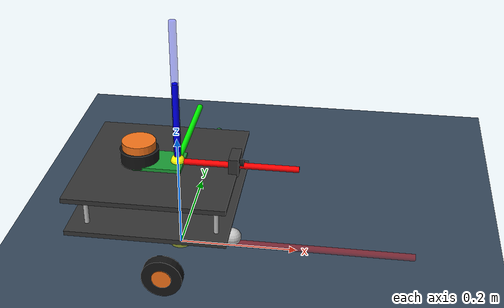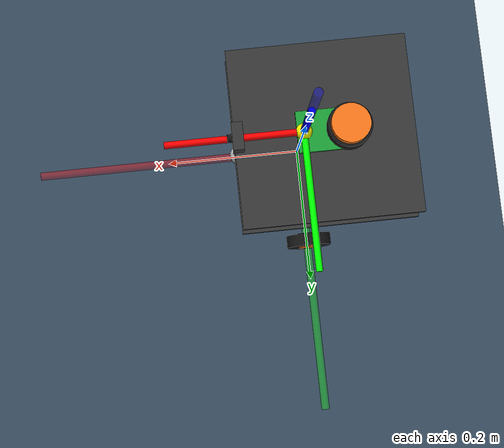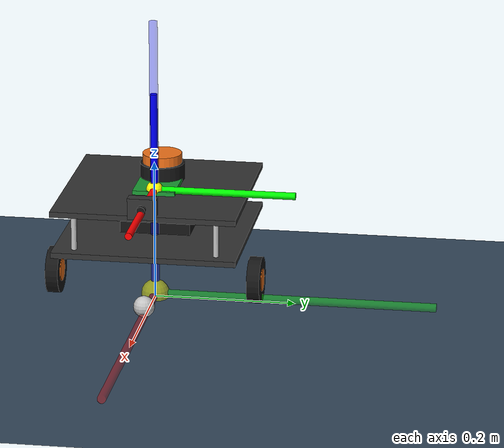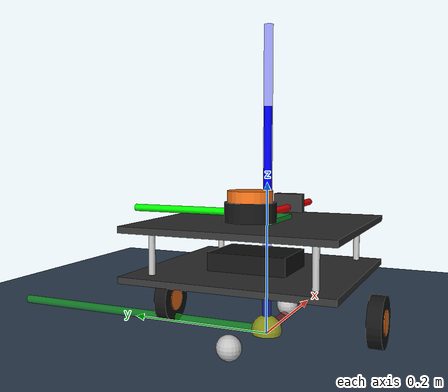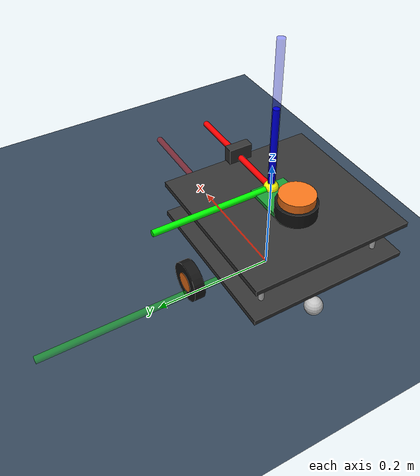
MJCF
<mujoco model="turtlebot3_waffle_pi">
  <compiler angle="radian" coordinate="local" inertiafromgeom="true"/>
  <!-- implicitfast + 2 ms step keeps the velocity-controlled wheels stable (RK4 at 5 ms made the robot bounce) -->
  <option gravity="0 0 -9.81" timestep="0.002" integrator="implicitfast"/>

  <default>
    <geom contype="1" conaffinity="1" condim="3"/>
  </default>

  <visual>
    <headlight ambient="0.4 0.4 0.4" diffuse="0.8 0.8 0.8" specular="0.1 0.1 0.1"/>
  </visual>

  <asset>
    <texture type="skybox" builtin="gradient" rgb1="0.3 0.5 0.7" rgb2="0.1 0.15 0.2" width="512" height="512"/>
    <texture name="grid" type="2d" builtin="checker" width="512" height="512" rgb1="0.25 0.35 0.45" rgb2="0.15 0.2 0.25"/>
    <material name="grid_mat" texture="grid" texrepeat="25 25" reflectance="0.2"/>
    <material name="dark_gray" rgba="0.2 0.2 0.2 1"/>
    <material name="light_gray" rgba="0.75 0.75 0.75 1"/>
    <material name="black" rgba="0.08 0.08 0.08 1"/>
    <material name="red_axis" rgba="1 0 0 1"/>
    <material name="green_axis" rgba="0 1 0 1"/>
    <material name="blue_axis" rgba="0 0 1 1"/>
    <material name="orange" rgba="0.95 0.45 0.1 1"/>
  </asset>

  <worldbody>
    <!-- Ground Plane -->
    <geom name="floor" type="plane" size="20 20 0.1" material="grid_mat" friction="1.5 0.01 0.001"/>

    <!-- Fixed World Reference Frame {s} at Origin -->
    <site name="world_origin" pos="0 0 0.005" size="0.02" rgba="1 1 0 0.5"/>
    <geom name="world_x" type="cylinder" fromto="0 0 0.005 0.4 0 0.005" size="0.006" rgba="1 0 0 0.35" contype="0" conaffinity="0"/>
    <geom name="world_y" type="cylinder" fromto="0 0 0.005 0 0.4 0.005" size="0.006" rgba="0 1 0 0.35" contype="0" conaffinity="0"/>
    <geom name="world_z" type="cylinder" fromto="0 0 0.005 0 0 0.405" size="0.006" rgba="0 0 1 0.35" contype="0" conaffinity="0"/>

    <!-- TurtleBot3 Body -->
    <body name="turtlebot" pos="0 0 0.08">
      <freejoint name="root"/>

      <!-- Main Chassis Plates -->
      <geom name="base_plate_bottom" type="box" size="0.13 0.13 0.004" pos="-0.03 0 0.01" material="dark_gray" mass="0.6"/>
      <geom name="base_plate_top" type="box" size="0.13 0.13 0.004" pos="-0.03 0 0.07" material="dark_gray" mass="0.4"/>

      <!-- Standoff Spacers -->
      <geom name="sp_fl" type="cylinder" fromto="0.08 0.10 0.014 0.08 0.10 0.066" size="0.004" material="light_gray" mass="0.01" contype="0" conaffinity="0"/>
      <geom name="sp_fr" type="cylinder" fromto="0.08 -0.10 0.014 0.08 -0.10 0.066" size="0.004" material="light_gray" mass="0.01" contype="0" conaffinity="0"/>
      <geom name="sp_bl" type="cylinder" fromto="-0.13 0.10 0.014 -0.13 0.10 0.066" size="0.004" material="light_gray" mass="0.01" contype="0" conaffinity="0"/>
      <geom name="sp_br" type="cylinder" fromto="-0.13 -0.10 0.014 -0.13 -0.10 0.066" size="0.004" material="light_gray" mass="0.01" contype="0" conaffinity="0"/>

      <!-- Battery & Board -->
      <geom name="battery" type="box" size="0.04 0.05 0.012" pos="-0.04 0 0.025" material="black" mass="0.3"/>
      <geom name="sbc" type="box" size="0.04 0.03 0.004" pos="-0.03 0 0.076" rgba="0.1 0.6 0.2 1" mass="0.1"/>

      <!-- LDS Lidar -->
      <geom name="lidar_base" type="cylinder" pos="-0.064 0 0.088" size="0.032 0.012" material="black" mass="0.12" contype="0" conaffinity="0"/>
      <geom name="lidar_top" type="cylinder" pos="-0.064 0 0.106" size="0.028 0.008" material="orange" mass="0.05" contype="0" conaffinity="0"/>

      <!-- Camera Mount -->
      <geom name="cam_mount" type="box" pos="0.095 0 0.085" size="0.008 0.02 0.015" material="dark_gray" mass="0.02" contype="0" conaffinity="0"/>
      <geom name="cam_lens" type="cylinder" fromto="0.10 0 0.085 0.11 0 0.085" size="0.006" material="black" mass="0.01" contype="0" conaffinity="0"/>

      <!-- Attached Moving Body Frame {b} (RGB = XYZ) -->
      <site name="body_origin" pos="0 0 0.08" size="0.012" rgba="1 1 0 1"/>
      <geom name="body_x_axis" type="cylinder" fromto="0 0 0.08 0.20 0 0.08" size="0.005" material="red_axis" mass="0.001" contype="0" conaffinity="0"/>
      <geom name="body_y_axis" type="cylinder" fromto="0 0 0.08 0 0.20 0.08" size="0.005" material="green_axis" mass="0.001" contype="0" conaffinity="0"/>
      <geom name="body_z_axis" type="cylinder" fromto="0 0 0.08 0 0 0.22" size="0.005" material="blue_axis" mass="0.001" contype="0" conaffinity="0"/>

      <!-- Left Wheel -->
      <body name="left_wheel" pos="0 0.144 -0.047">
        <joint name="left_wheel_joint" type="hinge" axis="0 1 0" damping="0.01"/>
        <geom name="left_wheel_geom" type="cylinder" size="0.033 0.009" zaxis="0 1 0" material="black" mass="0.1" friction="2.0 0.01 0.001"/>
        <geom name="left_cap" type="cylinder" size="0.016 0.010" zaxis="0 1 0" material="orange" mass="0.01" contype="0" conaffinity="0"/>
      </body>

      <!-- Right Wheel -->
      <body name="right_wheel" pos="0 -0.144 -0.047">
        <joint name="right_wheel_joint" type="hinge" axis="0 1 0" damping="0.01"/>
        <geom name="right_wheel_geom" type="cylinder" size="0.033 0.009" zaxis="0 1 0" material="black" mass="0.1" friction="2.0 0.01 0.001"/>
        <geom name="right_cap" type="cylinder" size="0.016 0.010" zaxis="0 1 0" material="orange" mass="0.01" contype="0" conaffinity="0"/>
      </body>

      <!-- Front Low-Friction Caster Support -->
      <!-- 3 mm above wheel contact so the casters only stop tipping and do not steal load from the drive wheels -->
      <body name="front_caster" pos="0.09 0 -0.062">
        <geom name="front_caster_geom" type="sphere" size="0.015" material="light_gray" mass="0.02" friction="0.0001 0.0001 0.0001"/>
      </body>

      <!-- Rear Low-Friction Caster Support -->
      <body name="rear_caster" pos="-0.13 0 -0.062">
        <geom name="rear_caster_geom" type="sphere" size="0.015" material="light_gray" mass="0.02" friction="0.0001 0.0001 0.0001"/>
      </body>
    </body>
  </worldbody>

  <!-- kv and torque limit sized for 33 mm wheels on a ~1.9 kg robot (kv=100 / 5 N·m flipped the chassis) -->
  <actuator>
    <velocity name="left_motor" joint="left_wheel_joint" kv="5" forcelimited="true" forcerange="-1 1"/>
    <velocity name="right_motor" joint="right_wheel_joint" kv="5" forcelimited="true" forcerange="-1 1"/>
  </actuator>
</mujoco>
